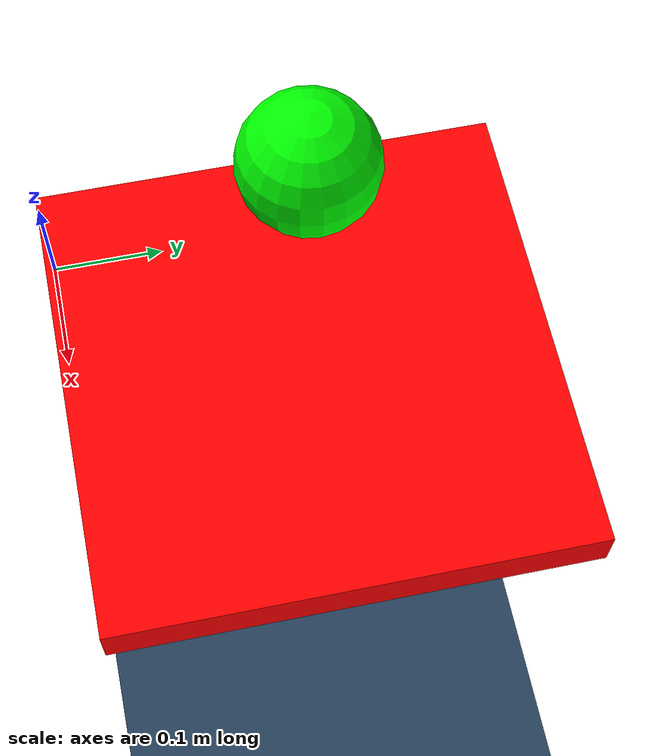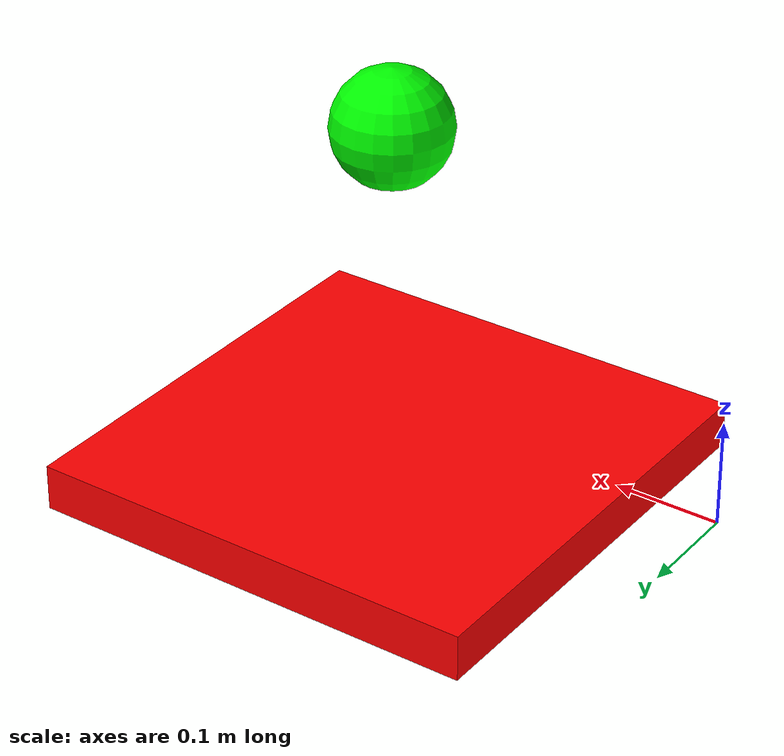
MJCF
<mujoco model="ball_balance">
  <asset>
    <texture name="grid" type="2d" builtin="checker" rgb1=".1 .2 .3"
     rgb2=".2 .3 .4" width="300" height="300" mark="none"/>
    <material name="grid" texture="grid" texrepeat="1 1"
     texuniform="true" reflectance=".2"/>
  </asset>

  <worldbody>
    <light name="light" pos="0 0 1"/>
    <geom name="floor" type="plane" pos="0 0 -.5" size="2 2 .1" material="grid"/>
    <camera name="fixed" pos="0 -1.3 .5" xyaxes="1 0 0 0 1 2"/>
    <body name="box" pos=".2 .2 .1">
      <joint name="rotate_x" pos="0 0 0" axis="1 0 0" range="-.25 .25" damping="20" />
      <joint name="rotate_y" pos="0 0 0" axis="0 1 0" range="-.25 .25" damping="20" />
      <joint name="rotate_z" pos="0 0 0" axis="0 0 1" range="-.25 .25" damping="20" />
      <joint axis="0 0 1" limited="true" name="slider_z" range="0 1" type="slide"/>
      <joint axis="0 1 0" limited="true" name="slider_y" range="-.25 .25" type="slide"/>
      <joint axis="1 0 0" limited="true" name="slider_x" range="-.25 .25" type="slide"/>
      <geom name="box" type="box" size=".2 .2 .02" rgba="1 0 0 1"/>
    </body>
    <body name="ball" pos=".2 .2 .4">
      <freejoint name="ball"/>
      <geom name="ball" pos="0 0 0" size=".05" rgba="0 1 0 1"/>
    </body>
  </worldbody>
  <actuator>
    <general name="act_x" joint="rotate_x" ctrlrange="-1 1" gainprm="1000 0 0" />
    <general name="act_y" joint="rotate_y" ctrlrange="-1 1" gainprm="1000 0 0" />
    <general name="act_z" joint="rotate_z" ctrlrange="-1 1" gainprm="1000 0 0" />
    <motor ctrllimited="true" ctrlrange="-1 1" gear="100" joint="slider_z" name="slider_z"/>
    <motor ctrllimited="true" ctrlrange="-1 1" gear="100" joint="slider_y" name="slider_y"/>
    <motor ctrllimited="true" ctrlrange="-1 1" gear="100" joint="slider_x" name="slider_x"/>
  </actuator>
</mujoco>
